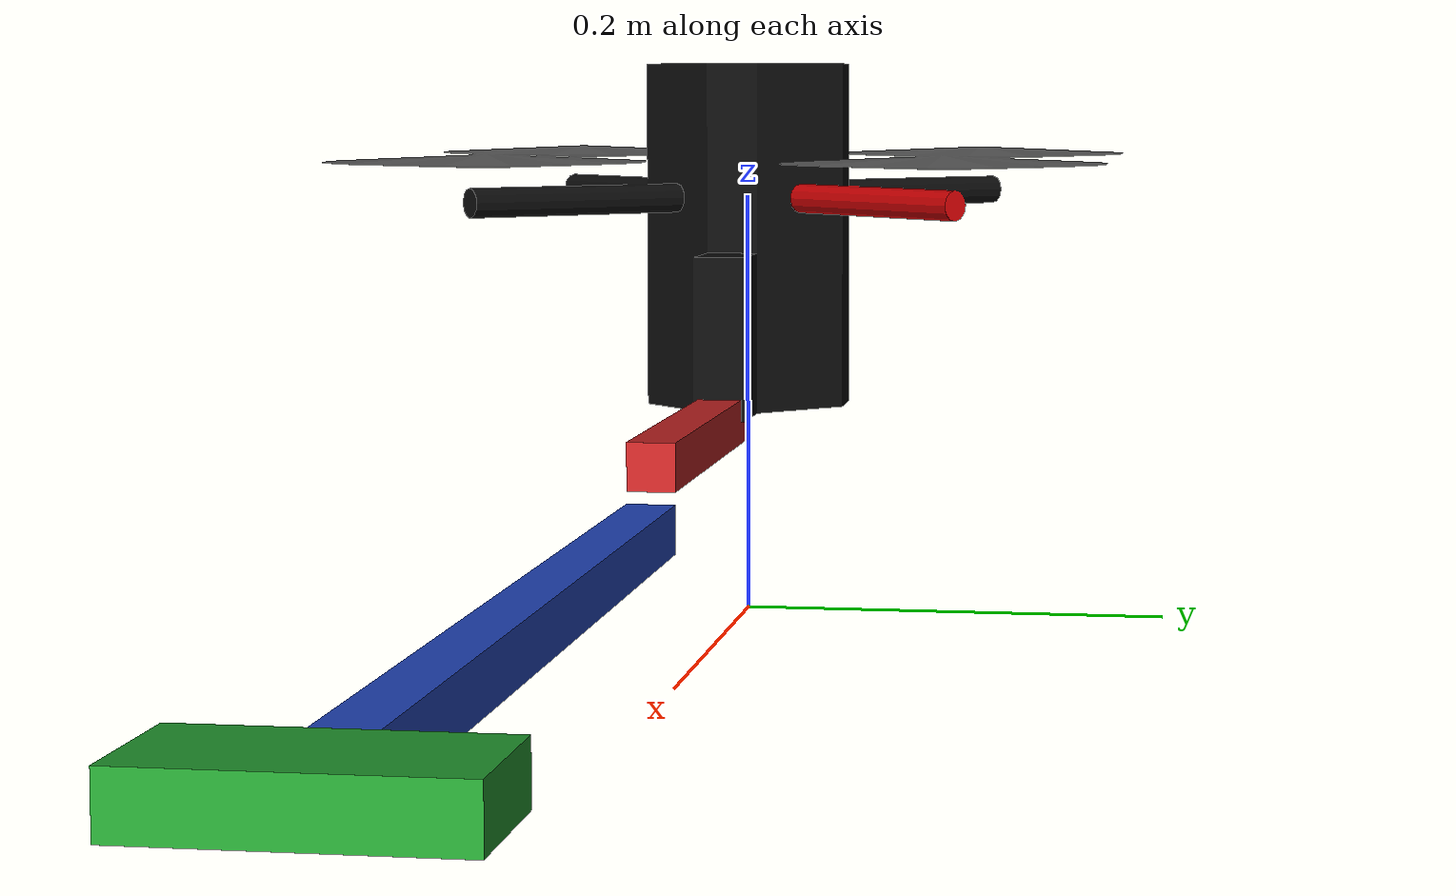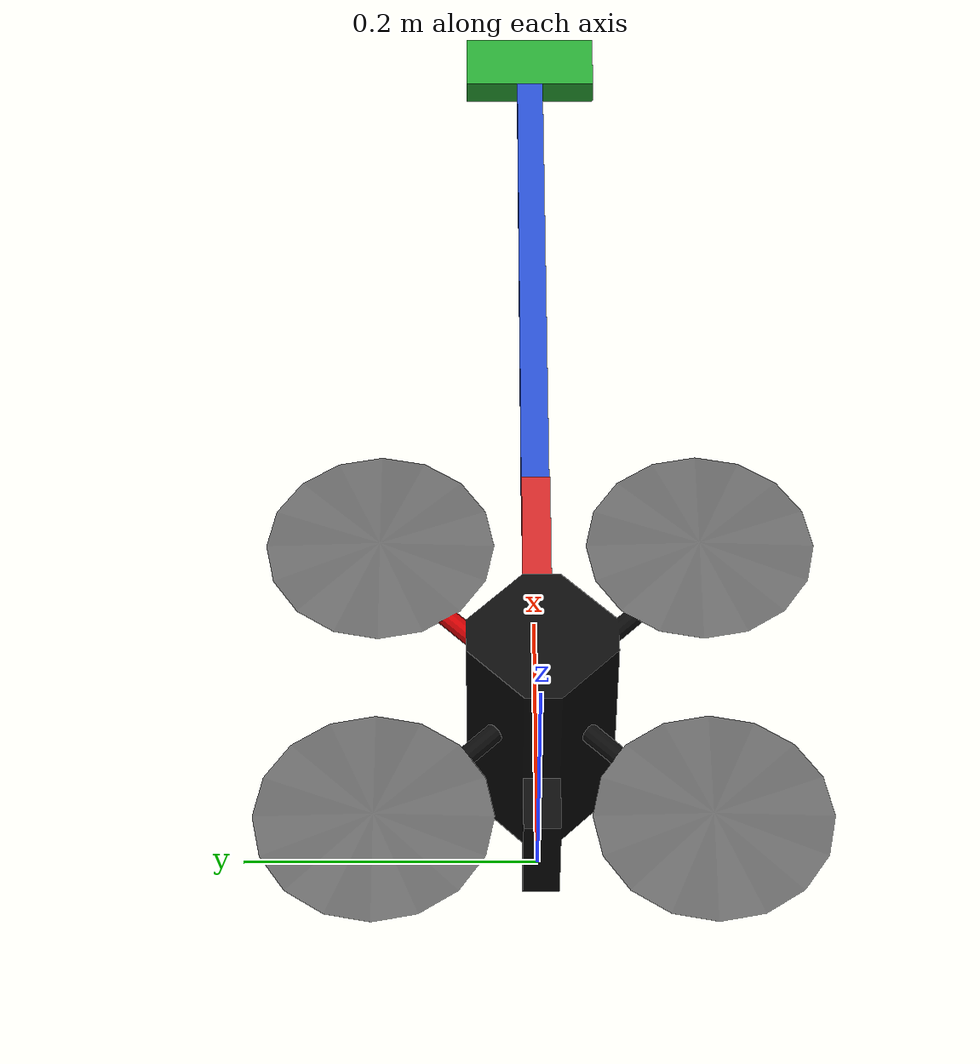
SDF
<?xml version="1.0"?>
<sdf version="1.5">
  <model name="Airbotwith2dofarm">
    <pose>0 0 0.2 0 0 0</pose>
    <link name="baselink">
      <pose>0 0 0 0 -0 0</pose>
      <inertial>
        <pose>0 0 0 0 -0 0</pose>
        <mass>1.4</mass>
        <inertia>
          <ixx>0.025694</ixx>
          <ixy>0</ixy>
          <ixz>0</ixz>
          <iyy>0.025694</iyy>
          <iyz>0</iyz>
          <izz>0.0451733</izz>
        </inertia>
      </inertial>
      <visual name="baselink_visual_airbase">
        <pose>0 0 0 0 -0 0</pose>
        <geometry>
          <mesh>
            <scale>1 1 1</scale>
            <uri>model://airbot/meshes/quadrotor_base.dae</uri>
          </mesh>
        </geometry>
      </visual>
      <collision name="baselink_visual_airbase">
        <pose>0 0 0 0 -0 0</pose>
        <geometry>
          <mesh>
            <scale>1 1 1</scale>
            <uri>model://airbot/meshes/quadrotor_base.dae</uri>
          </mesh>
        </geometry>
      </collision>
    </link>
    <link name="link1">
      <pose>0.0732 0 -0.1 0 -0 0</pose>
      <inertial>
        <pose>0 0 0 0 -0 0</pose>
        <mass>0.1</mass>
        <inertia>
          <ixx>4.16667e-05</ixx>
          <ixy>0</ixy>
          <ixz>0</ixz>
          <iyy>4.16667e-05</iyy>
          <iyz>0</iyz>
          <izz>4.16667e-05</izz>
        </inertia>
      </inertial>
      <visual name="link1_visual">
        <pose>0.0875 0 0 0 0 0</pose>
        <geometry>
          <box>
            <size>0.175 0.02 0.02</size>
          </box>
        </geometry>
        <material>
          <script>
            <uri>file://media/materials/scripts/gazebo.material</uri>
            <name>Gazebo/Red</name>
          </script>
        </material>
      </visual>
      <collision name="link1_coll">
        <pose>0.0875 0 0 0 0 0</pose>
        <geometry>
          <box>
            <size>0.175 0.02 0.02</size>
          </box>
        </geometry>
      </collision>
    </link>
    <joint name="airbase_joint_link1" type="revolute">
      <child>link1</child>
      <parent>baselink</parent>
      <axis>
        <xyz>0 1 0</xyz>
        <limit>
          <lower>-0.2617</lower>
          <upper>1.30899</upper>
          <effort>30</effort>
          <velocity>10</velocity>
        </limit>
        <use_parent_model_frame>1</use_parent_model_frame>
      </axis>
    </joint>
    <link name="link2">
      <pose>0.2482 0 -0.125 0 0 0</pose>
      <inertial>
        <pose>0.102692 0 0 0 0 0</pose>
        <mass>0.13</mass>
        <inertia>
          <ixx>4.36667e-05</ixx>
          <ixy>0</ixy>
          <ixz>0</ixz>
          <iyy>0.00461872</iyy>
          <iyz>0</iyz>
          <izz>0.00461872</izz>
        </inertia>
      </inertial>
      <visual name="link2_visual">
        <pose>0.21 0 0 0 0 0</pose>
        <geometry>
          <box>
            <size>0.42 0.02 0.02</size>
          </box>
        </geometry>
        <material>
          <script>
            <uri>file://media/materials/scripts/gazebo.material</uri>
            <name>Gazebo/Blue</name>
          </script>
        </material>
      </visual>
      <collision name="link2_coll">
        <pose>0.21 0 0 0 0 0</pose>
        <geometry>
          <box>
            <size>0.42 0.02 0.02</size>
          </box>
        </geometry>
      </collision>
      <visual name="link2_visual_link3">
        <pose>0.445 0 0 0 0 0</pose>
        <geometry>
          <box>
            <size>0.05 0.1 0.02</size>
          </box>
        </geometry>
        <material>
          <script>
            <uri>file://media/materials/scripts/gazebo.material</uri>
            <name>Gazebo/Green</name>
          </script>
        </material>
      </visual>
      <collision name="link2_coll_link3">
        <pose>0.445 0 0 0 -0 0</pose>
        <geometry>
          <box>
            <size>0.05 0.1 0.02</size>
          </box>
        </geometry>
      </collision>
    </link>
    <joint name="link1_joint_link2" type="revolute">
      <child>link2</child>
      <parent>link1</parent>
      <axis>
        <xyz>0 1 0</xyz>
        <limit>
          <lower>-1.5708</lower>
          <upper>3.14159</upper>
          <effort>30</effort>
          <velocity>10</velocity>
        </limit>
        <use_parent_model_frame>1</use_parent_model_frame>
      </axis>
    </joint>
  </model>
</sdf>
